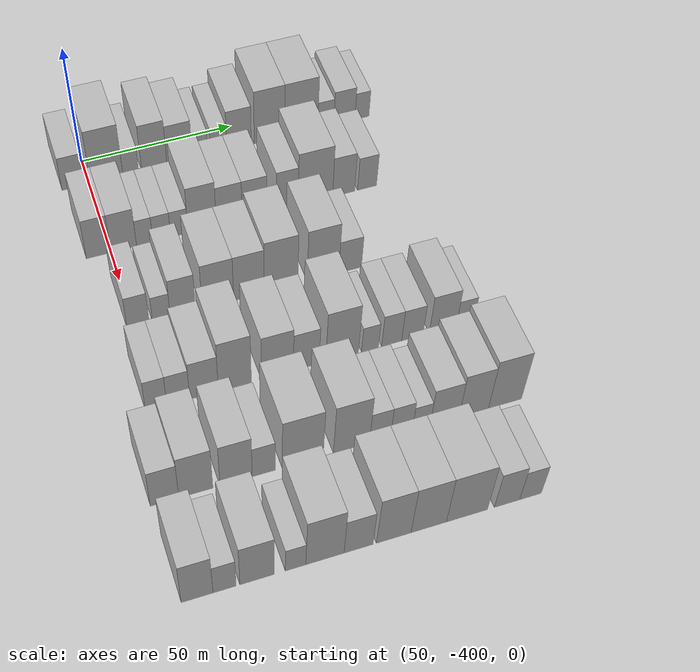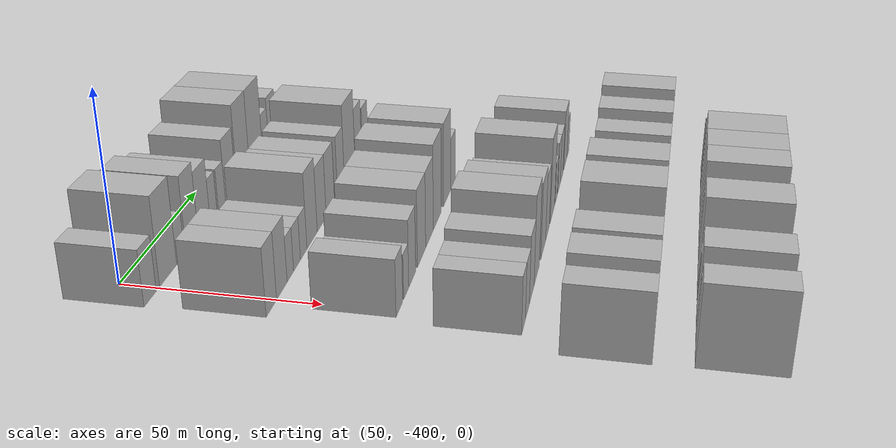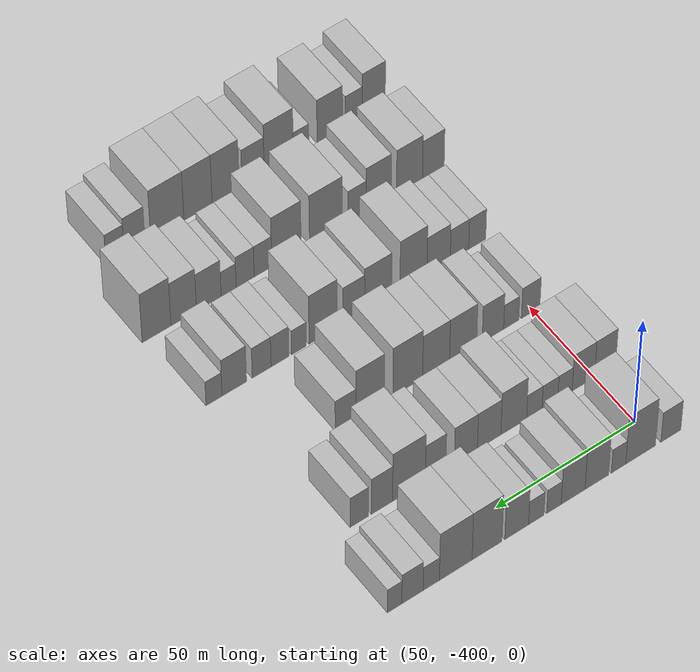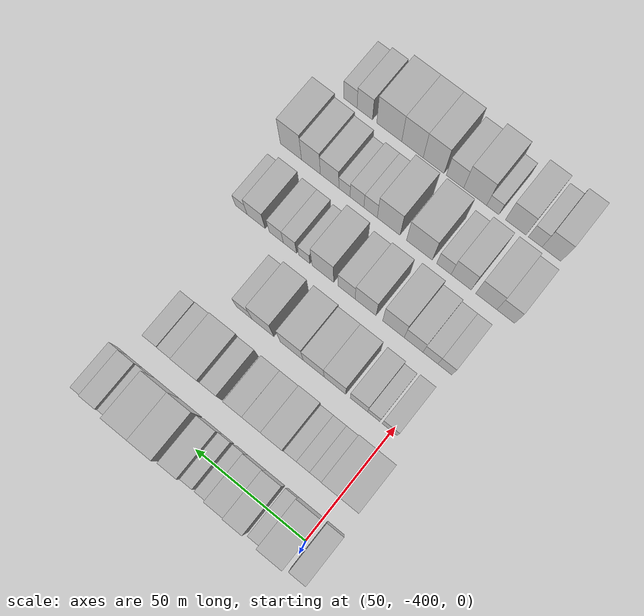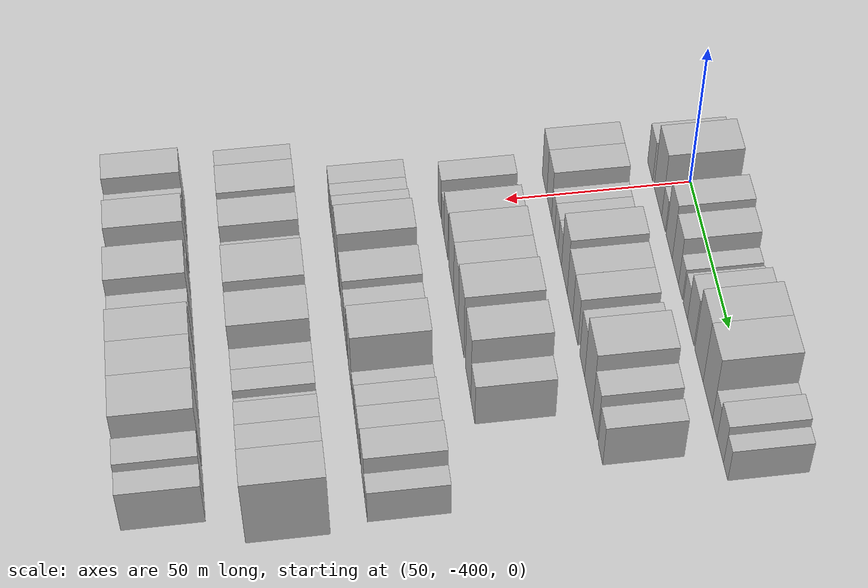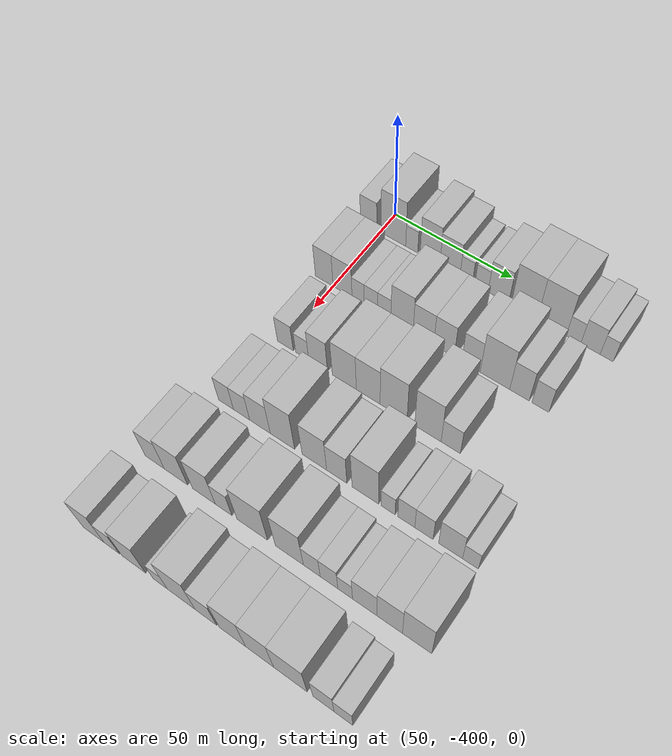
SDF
<sdf version="1.6">
 <world name="default">
  <model name="building_13">
   <static>1</static>
   <pose>50.0000 -405.1917 0 0.000000 0.000000 0.000000</pose>
   <link name="link">
    <pose>0 0 7.50 0 0 0</pose>
    <collision name="collision"><geometry><box><size>20.0000 7.2575 15.0000</size></box></geometry></collision>
    <visual name="visual">
     <cast_shadows>0</cast_shadows>
     <geometry><box><size>20.0000 7.2575 15.0000</size></box></geometry>
     <material>
      <script>
       <uri>model://HANNAS_wall/materials/scripts</uri>
       <uri>model://HANNAS_wall/materials/textures</uri>
       <name>vrc/HANNAS_wall</name>
      </script>
     </material>
    </visual>
   </link>
  </model>
  <model name="building_14">
   <static>1</static>
   <pose>50.0000 -394.1931 0 0.000000 0.000000 0.000000</pose>
   <link name="link">
    <pose>0 0 12.00 0 0 0</pose>
    <collision name="collision"><geometry><box><size>20.0000 10.7398 24.0000</size></box></geometry></collision>
    <visual name="visual">
     <cast_shadows>0</cast_shadows>
     <geometry><box><size>20.0000 10.7398 24.0000</size></box></geometry>
     <material>
      <script>
       <uri>model://HANNAS_wall/materials/scripts</uri>
       <uri>model://HANNAS_wall/materials/textures</uri>
       <name>vrc/HANNAS_wall</name>
      </script>
     </material>
    </visual>
   </link>
  </model>
  <model name="building_15">
   <static>1</static>
   <pose>50.0000 -386.2215 0 0.000000 0.000000 0.000000</pose>
   <link name="link">
    <pose>0 0 6.00 0 0 0</pose>
    <collision name="collision"><geometry><box><size>20.0000 5.2034 12.0000</size></box></geometry></collision>
    <visual name="visual">
     <cast_shadows>0</cast_shadows>
     <geometry><box><size>20.0000 5.2034 12.0000</size></box></geometry>
     <material>
      <script>
       <uri>model://HANNAS_wall/materials/scripts</uri>
       <uri>model://HANNAS_wall/materials/textures</uri>
       <name>vrc/HANNAS_wall</name>
      </script>
     </material>
    </visual>
   </link>
  </model>
  <model name="building_16">
   <static>1</static>
   <pose>50.0000 -378.4043 0 0.000000 0.000000 0.000000</pose>
   <link name="link">
    <pose>0 0 10.50 0 0 0</pose>
    <collision name="collision"><geometry><box><size>20.0000 8.4311 21.0000</size></box></geometry></collision>
    <visual name="visual">
     <cast_shadows>0</cast_shadows>
     <geometry><box><size>20.0000 8.4311 21.0000</size></box></geometry>
     <material>
      <script>
       <uri>model://HANNAS_wall/materials/scripts</uri>
       <uri>model://HANNAS_wall/materials/textures</uri>
       <name>vrc/HANNAS_wall</name>
      </script>
     </material>
    </visual>
   </link>
  </model>
  <model name="building_17">
   <static>1</static>
   <pose>50.0000 -369.9355 0 0.000000 0.000000 0.000000</pose>
   <link name="link">
    <pose>0 0 9.00 0 0 0</pose>
    <collision name="collision"><geometry><box><size>20.0000 8.5065 18.0000</size></box></geometry></collision>
    <visual name="visual">
     <cast_shadows>0</cast_shadows>
     <geometry><box><size>20.0000 8.5065 18.0000</size></box></geometry>
     <material>
      <script>
       <uri>model://HANNAS_wall/materials/scripts</uri>
       <uri>model://HANNAS_wall/materials/textures</uri>
       <name>vrc/HANNAS_wall</name>
      </script>
     </material>
    </visual>
   </link>
  </model>
  <model name="building_18">
   <static>1</static>
   <pose>50.0000 -363.0840 0 0.000000 0.000000 0.000000</pose>
   <link name="link">
    <pose>0 0 6.00 0 0 0</pose>
    <collision name="collision"><geometry><box><size>20.0000 5.1966 12.0000</size></box></geometry></collision>
    <visual name="visual">
     <cast_shadows>0</cast_shadows>
     <geometry><box><size>20.0000 5.1966 12.0000</size></box></geometry>
     <material>
      <script>
       <uri>model://HANNAS_wall/materials/scripts</uri>
       <uri>model://HANNAS_wall/materials/textures</uri>
       <name>vrc/HANNAS_wall</name>
      </script>
     </material>
    </visual>
   </link>
  </model>
  <model name="building_19">
   <static>1</static>
   <pose>50.0000 -356.7629 0 0.000000 0.000000 0.000000</pose>
   <link name="link">
    <pose>0 0 6.00 0 0 0</pose>
    <collision name="collision"><geometry><box><size>20.0000 5.4455 12.0000</size></box></geometry></collision>
    <visual name="visual">
     <cast_shadows>0</cast_shadows>
     <geometry><box><size>20.0000 5.4455 12.0000</size></box></geometry>
     <material>
      <script>
       <uri>model://HANNAS_wall/materials/scripts</uri>
       <uri>model://HANNAS_wall/materials/textures</uri>
       <name>vrc/HANNAS_wall</name>
      </script>
     </material>
    </visual>
   </link>
  </model>
  <model name="building_20">
   <static>1</static>
   <pose>50.0000 -349.8365 0 0.000000 0.000000 0.000000</pose>
   <link name="link">
    <pose>0 0 9.00 0 0 0</pose>
    <collision name="collision"><geometry><box><size>20.0000 8.4072 18.0000</size></box></geometry></collision>
    <visual name="visual">
     <cast_shadows>0</cast_shadows>
     <geometry><box><size>20.0000 8.4072 18.0000</size></box></geometry>
     <material>
      <script>
       <uri>model://HANNAS_wall/materials/scripts</uri>
       <uri>model://HANNAS_wall/materials/textures</uri>
       <name>vrc/HANNAS_wall</name>
      </script>
     </material>
    </visual>
   </link>
  </model>
  <model name="building_21">
   <static>1</static>
   <pose>50.0000 -339.3673 0 0.000000 0.000000 0.000000</pose>
   <link name="link">
    <pose>0 0 12.00 0 0 0</pose>
    <collision name="collision"><geometry><box><size>20.0000 10.5312 24.0000</size></box></geometry></collision>
    <visual name="visual">
     <cast_shadows>0</cast_shadows>
     <geometry><box><size>20.0000 10.5312 24.0000</size></box></geometry>
     <material>
      <script>
       <uri>model://HANNAS_wall/materials/scripts</uri>
       <uri>model://HANNAS_wall/materials/textures</uri>
       <name>vrc/HANNAS_wall</name>
      </script>
     </material>
    </visual>
   </link>
  </model>
  <model name="building_22">
   <static>1</static>
   <pose>50.0000 -328.3895 0 0.000000 0.000000 0.000000</pose>
   <link name="link">
    <pose>0 0 12.00 0 0 0</pose>
    <collision name="collision"><geometry><box><size>20.0000 11.4244 24.0000</size></box></geometry></collision>
    <visual name="visual">
     <cast_shadows>0</cast_shadows>
     <geometry><box><size>20.0000 11.4244 24.0000</size></box></geometry>
     <material>
      <script>
       <uri>model://HANNAS_wall/materials/scripts</uri>
       <uri>model://HANNAS_wall/materials/textures</uri>
       <name>vrc/HANNAS_wall</name>
      </script>
     </material>
    </visual>
   </link>
  </model>
  <model name="building_23">
   <static>1</static>
   <pose>50.0000 -319.8592 0 0.000000 0.000000 0.000000</pose>
   <link name="link">
    <pose>0 0 6.00 0 0 0</pose>
    <collision name="collision"><geometry><box><size>20.0000 5.6362 12.0000</size></box></geometry></collision>
    <visual name="visual">
     <cast_shadows>0</cast_shadows>
     <geometry><box><size>20.0000 5.6362 12.0000</size></box></geometry>
     <material>
      <script>
       <uri>model://HANNAS_wall/materials/scripts</uri>
       <uri>model://HANNAS_wall/materials/textures</uri>
       <name>vrc/HANNAS_wall</name>
      </script>
     </material>
    </visual>
   </link>
  </model>
  <model name="building_24">
   <static>1</static>
   <pose>50.0000 -313.3237 0 0.000000 0.000000 0.000000</pose>
   <link name="link">
    <pose>0 0 7.50 0 0 0</pose>
    <collision name="collision"><geometry><box><size>20.0000 7.4347 15.0000</size></box></geometry></collision>
    <visual name="visual">
     <cast_shadows>0</cast_shadows>
     <geometry><box><size>20.0000 7.4347 15.0000</size></box></geometry>
     <material>
      <script>
       <uri>model://HANNAS_wall/materials/scripts</uri>
       <uri>model://HANNAS_wall/materials/textures</uri>
       <name>vrc/HANNAS_wall</name>
      </script>
     </material>
    </visual>
   </link>
  </model>
  <model name="building_25">
   <static>1</static>
   <pose>50.0000 -307.1202 0 0.000000 0.000000 0.000000</pose>
   <link name="link">
    <pose>0 0 6.00 0 0 0</pose>
    <collision name="collision"><geometry><box><size>20.0000 4.9723 12.0000</size></box></geometry></collision>
    <visual name="visual">
     <cast_shadows>0</cast_shadows>
     <geometry><box><size>20.0000 4.9723 12.0000</size></box></geometry>
     <material>
      <script>
       <uri>model://HANNAS_wall/materials/scripts</uri>
       <uri>model://HANNAS_wall/materials/textures</uri>
       <name>vrc/HANNAS_wall</name>
      </script>
     </material>
    </visual>
   </link>
  </model>
  <model name="building_132">
   <static>1</static>
   <pose>79.0000 -403.9005 0 0.000000 0.000000 0.000000</pose>
   <link name="link">
    <pose>0 0 9.00 0 0 0</pose>
    <collision name="collision"><geometry><box><size>20.0000 7.7233 18.0000</size></box></geometry></collision>
    <visual name="visual">
     <cast_shadows>0</cast_shadows>
     <geometry><box><size>20.0000 7.7233 18.0000</size></box></geometry>
     <material>
      <script>
       <uri>model://HANNAS_wall/materials/scripts</uri>
       <uri>model://HANNAS_wall/materials/textures</uri>
       <name>vrc/HANNAS_wall</name>
      </script>
     </material>
    </visual>
   </link>
  </model>
  <model name="building_133">
   <static>1</static>
   <pose>79.0000 -395.9456 0 0.000000 0.000000 0.000000</pose>
   <link name="link">
    <pose>0 0 9.00 0 0 0</pose>
    <collision name="collision"><geometry><box><size>20.0000 8.1865 18.0000</size></box></geometry></collision>
    <visual name="visual">
     <cast_shadows>0</cast_shadows>
     <geometry><box><size>20.0000 8.1865 18.0000</size></box></geometry>
     <material>
      <script>
       <uri>model://HANNAS_wall/materials/scripts</uri>
       <uri>model://HANNAS_wall/materials/textures</uri>
       <name>vrc/HANNAS_wall</name>
      </script>
     </material>
    </visual>
   </link>
  </model>
  <model name="building_134">
   <static>1</static>
   <pose>79.0000 -389.2484 0 0.000000 0.000000 0.000000</pose>
   <link name="link">
    <pose>0 0 6.00 0 0 0</pose>
    <collision name="collision"><geometry><box><size>20.0000 5.2079 12.0000</size></box></geometry></collision>
    <visual name="visual">
     <cast_shadows>0</cast_shadows>
     <geometry><box><size>20.0000 5.2079 12.0000</size></box></geometry>
     <material>
      <script>
       <uri>model://HANNAS_wall/materials/scripts</uri>
       <uri>model://HANNAS_wall/materials/textures</uri>
       <name>vrc/HANNAS_wall</name>
      </script>
     </material>
    </visual>
   </link>
  </model>
  <model name="building_135">
   <static>1</static>
   <pose>79.0000 -383.7924 0 0.000000 0.000000 0.000000</pose>
   <link name="link">
    <pose>0 0 6.00 0 0 0</pose>
    <collision name="collision"><geometry><box><size>20.0000 5.7040 12.0000</size></box></geometry></collision>
    <visual name="visual">
     <cast_shadows>0</cast_shadows>
     <geometry><box><size>20.0000 5.7040 12.0000</size></box></geometry>
     <material>
      <script>
       <uri>model://HANNAS_wall/materials/scripts</uri>
       <uri>model://HANNAS_wall/materials/textures</uri>
       <name>vrc/HANNAS_wall</name>
      </script>
     </material>
    </visual>
   </link>
  </model>
  <model name="building_136">
   <static>1</static>
   <pose>79.0000 -378.1540 0 0.000000 0.000000 0.000000</pose>
   <link name="link">
    <pose>0 0 6.00 0 0 0</pose>
    <collision name="collision"><geometry><box><size>20.0000 5.5729 12.0000</size></box></geometry></collision>
    <visual name="visual">
     <cast_shadows>0</cast_shadows>
     <geometry><box><size>20.0000 5.5729 12.0000</size></box></geometry>
     <material>
      <script>
       <uri>model://HANNAS_wall/materials/scripts</uri>
       <uri>model://HANNAS_wall/materials/textures</uri>
       <name>vrc/HANNAS_wall</name>
      </script>
     </material>
    </visual>
   </link>
  </model>
  <model name="building_137">
   <static>1</static>
   <pose>79.0000 -370.7652 0 0.000000 0.000000 0.000000</pose>
   <link name="link">
    <pose>0 0 10.50 0 0 0</pose>
    <collision name="collision"><geometry><box><size>20.0000 9.2048 21.0000</size></box></geometry></collision>
    <visual name="visual">
     <cast_shadows>0</cast_shadows>
     <geometry><box><size>20.0000 9.2048 21.0000</size></box></geometry>
     <material>
      <script>
       <uri>model://HANNAS_wall/materials/scripts</uri>
       <uri>model://HANNAS_wall/materials/textures</uri>
       <name>vrc/HANNAS_wall</name>
      </script>
     </material>
    </visual>
   </link>
  </model>
  <model name="building_138">
   <static>1</static>
   <pose>79.0000 -361.9419 0 0.000000 0.000000 0.000000</pose>
   <link name="link">
    <pose>0 0 9.00 0 0 0</pose>
    <collision name="collision"><geometry><box><size>20.0000 8.4418 18.0000</size></box></geometry></collision>
    <visual name="visual">
     <cast_shadows>0</cast_shadows>
     <geometry><box><size>20.0000 8.4418 18.0000</size></box></geometry>
     <material>
      <script>
       <uri>model://HANNAS_wall/materials/scripts</uri>
       <uri>model://HANNAS_wall/materials/textures</uri>
       <name>vrc/HANNAS_wall</name>
      </script>
     </material>
    </visual>
   </link>
  </model>
  <model name="building_139">
   <static>1</static>
   <pose>79.0000 -353.6182 0 0.000000 0.000000 0.000000</pose>
   <link name="link">
    <pose>0 0 9.00 0 0 0</pose>
    <collision name="collision"><geometry><box><size>20.0000 8.2054 18.0000</size></box></geometry></collision>
    <visual name="visual">
     <cast_shadows>0</cast_shadows>
     <geometry><box><size>20.0000 8.2054 18.0000</size></box></geometry>
     <material>
      <script>
       <uri>model://HANNAS_wall/materials/scripts</uri>
       <uri>model://HANNAS_wall/materials/textures</uri>
       <name>vrc/HANNAS_wall</name>
      </script>
     </material>
    </visual>
   </link>
  </model>
  <model name="building_140">
   <static>1</static>
   <pose>79.0000 -342.8990 0 0.000000 0.000000 0.000000</pose>
   <link name="link">
    <pose>0 0 9.00 0 0 0</pose>
    <collision name="collision"><geometry><box><size>20.0000 7.2331 18.0000</size></box></geometry></collision>
    <visual name="visual">
     <cast_shadows>0</cast_shadows>
     <geometry><box><size>20.0000 7.2331 18.0000</size></box></geometry>
     <material>
      <script>
       <uri>model://HANNAS_wall/materials/scripts</uri>
       <uri>model://HANNAS_wall/materials/textures</uri>
       <name>vrc/HANNAS_wall</name>
      </script>
     </material>
    </visual>
   </link>
  </model>
  <model name="building_141">
   <static>1</static>
   <pose>79.0000 -333.4975 0 0.000000 0.000000 0.000000</pose>
   <link name="link">
    <pose>0 0 12.00 0 0 0</pose>
    <collision name="collision"><geometry><box><size>20.0000 11.5697 24.0000</size></box></geometry></collision>
    <visual name="visual">
     <cast_shadows>0</cast_shadows>
     <geometry><box><size>20.0000 11.5697 24.0000</size></box></geometry>
     <material>
      <script>
       <uri>model://HANNAS_wall/materials/scripts</uri>
       <uri>model://HANNAS_wall/materials/textures</uri>
       <name>vrc/HANNAS_wall</name>
      </script>
     </material>
    </visual>
   </link>
  </model>
  <model name="building_142">
   <static>1</static>
   <pose>79.0000 -323.9818 0 0.000000 0.000000 0.000000</pose>
   <link name="link">
    <pose>0 0 9.00 0 0 0</pose>
    <collision name="collision"><geometry><box><size>20.0000 7.4618 18.0000</size></box></geometry></collision>
    <visual name="visual">
     <cast_shadows>0</cast_shadows>
     <geometry><box><size>20.0000 7.4618 18.0000</size></box></geometry>
     <material>
      <script>
       <uri>model://HANNAS_wall/materials/scripts</uri>
       <uri>model://HANNAS_wall/materials/textures</uri>
       <name>vrc/HANNAS_wall</name>
      </script>
     </material>
    </visual>
   </link>
  </model>
  <model name="building_143">
   <static>1</static>
   <pose>79.0000 -316.0363 0 0.000000 0.000000 0.000000</pose>
   <link name="link">
    <pose>0 0 7.50 0 0 0</pose>
    <collision name="collision"><geometry><box><size>20.0000 6.4293 15.0000</size></box></geometry></collision>
    <visual name="visual">
     <cast_shadows>0</cast_shadows>
     <geometry><box><size>20.0000 6.4293 15.0000</size></box></geometry>
     <material>
      <script>
       <uri>model://HANNAS_wall/materials/scripts</uri>
       <uri>model://HANNAS_wall/materials/textures</uri>
       <name>vrc/HANNAS_wall</name>
      </script>
     </material>
    </visual>
   </link>
  </model>
  <model name="building_247">
   <static>1</static>
   <pose>108.0000 -398.9065 0 0.000000 0.000000 0.000000</pose>
   <link name="link">
    <pose>0 0 7.50 0 0 0</pose>
    <collision name="collision"><geometry><box><size>20.0000 6.7794 15.0000</size></box></geometry></collision>
    <visual name="visual">
     <cast_shadows>0</cast_shadows>
     <geometry><box><size>20.0000 6.7794 15.0000</size></box></geometry>
     <material>
      <script>
       <uri>model://HANNAS_wall/materials/scripts</uri>
       <uri>model://HANNAS_wall/materials/textures</uri>
       <name>vrc/HANNAS_wall</name>
      </script>
     </material>
    </visual>
   </link>
  </model>
  <model name="building_248">
   <static>1</static>
   <pose>108.0000 -391.7732 0 0.000000 0.000000 0.000000</pose>
   <link name="link">
    <pose>0 0 6.00 0 0 0</pose>
    <collision name="collision"><geometry><box><size>20.0000 5.4873 12.0000</size></box></geometry></collision>
    <visual name="visual">
     <cast_shadows>0</cast_shadows>
     <geometry><box><size>20.0000 5.4873 12.0000</size></box></geometry>
     <material>
      <script>
       <uri>model://HANNAS_wall/materials/scripts</uri>
       <uri>model://HANNAS_wall/materials/textures</uri>
       <name>vrc/HANNAS_wall</name>
      </script>
     </material>
    </visual>
   </link>
  </model>
  <model name="building_249">
   <static>1</static>
   <pose>108.0000 -385.1153 0 0.000000 0.000000 0.000000</pose>
   <link name="link">
    <pose>0 0 9.00 0 0 0</pose>
    <collision name="collision"><geometry><box><size>20.0000 7.8285 18.0000</size></box></geometry></collision>
    <visual name="visual">
     <cast_shadows>0</cast_shadows>
     <geometry><box><size>20.0000 7.8285 18.0000</size></box></geometry>
     <material>
      <script>
       <uri>model://HANNAS_wall/materials/scripts</uri>
       <uri>model://HANNAS_wall/materials/textures</uri>
       <name>vrc/HANNAS_wall</name>
      </script>
     </material>
    </visual>
   </link>
  </model>
  <model name="building_250">
   <static>1</static>
   <pose>108.0000 -374.2807 0 0.000000 0.000000 0.000000</pose>
   <link name="link">
    <pose>0 0 10.50 0 0 0</pose>
    <collision name="collision"><geometry><box><size>20.0000 9.8407 21.0000</size></box></geometry></collision>
    <visual name="visual">
     <cast_shadows>0</cast_shadows>
     <geometry><box><size>20.0000 9.8407 21.0000</size></box></geometry>
     <material>
      <script>
       <uri>model://HANNAS_wall/materials/scripts</uri>
       <uri>model://HANNAS_wall/materials/textures</uri>
       <name>vrc/HANNAS_wall</name>
      </script>
     </material>
    </visual>
   </link>
  </model>
  <model name="building_251">
   <static>1</static>
   <pose>108.0000 -364.5624 0 0.000000 0.000000 0.000000</pose>
   <link name="link">
    <pose>0 0 10.50 0 0 0</pose>
    <collision name="collision"><geometry><box><size>20.0000 9.5959 21.0000</size></box></geometry></collision>
    <visual name="visual">
     <cast_shadows>0</cast_shadows>
     <geometry><box><size>20.0000 9.5959 21.0000</size></box></geometry>
     <material>
      <script>
       <uri>model://HANNAS_wall/materials/scripts</uri>
       <uri>model://HANNAS_wall/materials/textures</uri>
       <name>vrc/HANNAS_wall</name>
      </script>
     </material>
    </visual>
   </link>
  </model>
  <model name="building_252">
   <static>1</static>
   <pose>108.0000 -354.4487 0 0.000000 0.000000 0.000000</pose>
   <link name="link">
    <pose>0 0 12.00 0 0 0</pose>
    <collision name="collision"><geometry><box><size>20.0000 10.6316 24.0000</size></box></geometry></collision>
    <visual name="visual">
     <cast_shadows>0</cast_shadows>
     <geometry><box><size>20.0000 10.6316 24.0000</size></box></geometry>
     <material>
      <script>
       <uri>model://HANNAS_wall/materials/scripts</uri>
       <uri>model://HANNAS_wall/materials/textures</uri>
       <name>vrc/HANNAS_wall</name>
      </script>
     </material>
    </visual>
   </link>
  </model>
  <model name="building_253">
   <static>1</static>
   <pose>108.0000 -341.0352 0 0.000000 0.000000 0.000000</pose>
   <link name="link">
    <pose>0 0 12.00 0 0 0</pose>
    <collision name="collision"><geometry><box><size>20.0000 10.1953 24.0000</size></box></geometry></collision>
    <visual name="visual">
     <cast_shadows>0</cast_shadows>
     <geometry><box><size>20.0000 10.1953 24.0000</size></box></geometry>
     <material>
      <script>
       <uri>model://HANNAS_wall/materials/scripts</uri>
       <uri>model://HANNAS_wall/materials/textures</uri>
       <name>vrc/HANNAS_wall</name>
      </script>
     </material>
    </visual>
   </link>
  </model>
  <model name="building_254">
   <static>1</static>
   <pose>108.0000 -332.2773 0 0.000000 0.000000 0.000000</pose>
   <link name="link">
    <pose>0 0 7.50 0 0 0</pose>
    <collision name="collision"><geometry><box><size>20.0000 7.3206 15.0000</size></box></geometry></collision>
    <visual name="visual">
     <cast_shadows>0</cast_shadows>
     <geometry><box><size>20.0000 7.3206 15.0000</size></box></geometry>
     <material>
      <script>
       <uri>model://HANNAS_wall/materials/scripts</uri>
       <uri>model://HANNAS_wall/materials/textures</uri>
       <name>vrc/HANNAS_wall</name>
      </script>
     </material>
    </visual>
   </link>
  </model>
  <model name="building_356">
   <static>1</static>
   <pose>137.0000 -401.1814 0 0.000000 0.000000 0.000000</pose>
   <link name="link">
    <pose>0 0 7.50 0 0 0</pose>
    <collision name="collision"><geometry><box><size>20.0000 6.2636 15.0000</size></box></geometry></collision>
    <visual name="visual">
     <cast_shadows>0</cast_shadows>
     <geometry><box><size>20.0000 6.2636 15.0000</size></box></geometry>
     <material>
      <script>
       <uri>model://HANNAS_wall/materials/scripts</uri>
       <uri>model://HANNAS_wall/materials/textures</uri>
       <name>vrc/HANNAS_wall</name>
      </script>
     </material>
    </visual>
   </link>
  </model>
  <model name="building_357">
   <static>1</static>
   <pose>137.0000 -394.6668 0 0.000000 0.000000 0.000000</pose>
   <link name="link">
    <pose>0 0 7.50 0 0 0</pose>
    <collision name="collision"><geometry><box><size>20.0000 6.7656 15.0000</size></box></geometry></collision>
    <visual name="visual">
     <cast_shadows>0</cast_shadows>
     <geometry><box><size>20.0000 6.7656 15.0000</size></box></geometry>
     <material>
      <script>
       <uri>model://HANNAS_wall/materials/scripts</uri>
       <uri>model://HANNAS_wall/materials/textures</uri>
       <name>vrc/HANNAS_wall</name>
      </script>
     </material>
    </visual>
   </link>
  </model>
  <model name="building_358">
   <static>1</static>
   <pose>137.0000 -387.0456 0 0.000000 0.000000 0.000000</pose>
   <link name="link">
    <pose>0 0 9.00 0 0 0</pose>
    <collision name="collision"><geometry><box><size>20.0000 8.4768 18.0000</size></box></geometry></collision>
    <visual name="visual">
     <cast_shadows>0</cast_shadows>
     <geometry><box><size>20.0000 8.4768 18.0000</size></box></geometry>
     <material>
      <script>
       <uri>model://HANNAS_wall/materials/scripts</uri>
       <uri>model://HANNAS_wall/materials/textures</uri>
       <name>vrc/HANNAS_wall</name>
      </script>
     </material>
    </visual>
   </link>
  </model>
  <model name="building_359">
   <static>1</static>
   <pose>137.0000 -377.8778 0 0.000000 0.000000 0.000000</pose>
   <link name="link">
    <pose>0 0 12.00 0 0 0</pose>
    <collision name="collision"><geometry><box><size>20.0000 9.8588 24.0000</size></box></geometry></collision>
    <visual name="visual">
     <cast_shadows>0</cast_shadows>
     <geometry><box><size>20.0000 9.8588 24.0000</size></box></geometry>
     <material>
      <script>
       <uri>model://HANNAS_wall/materials/scripts</uri>
       <uri>model://HANNAS_wall/materials/textures</uri>
       <name>vrc/HANNAS_wall</name>
      </script>
     </material>
    </visual>
   </link>
  </model>
  <model name="building_360">
   <static>1</static>
   <pose>137.0000 -365.0944 0 0.000000 0.000000 0.000000</pose>
   <link name="link">
    <pose>0 0 10.50 0 0 0</pose>
    <collision name="collision"><geometry><box><size>20.0000 9.7081 21.0000</size></box></geometry></collision>
    <visual name="visual">
     <cast_shadows>0</cast_shadows>
     <geometry><box><size>20.0000 9.7081 21.0000</size></box></geometry>
     <material>
      <script>
       <uri>model://HANNAS_wall/materials/scripts</uri>
       <uri>model://HANNAS_wall/materials/textures</uri>
       <name>vrc/HANNAS_wall</name>
      </script>
     </material>
    </visual>
   </link>
  </model>
  <model name="building_361">
   <static>1</static>
   <pose>137.0000 -356.2952 0 0.000000 0.000000 0.000000</pose>
   <link name="link">
    <pose>0 0 9.00 0 0 0</pose>
    <collision name="collision"><geometry><box><size>20.0000 7.8902 18.0000</size></box></geometry></collision>
    <visual name="visual">
     <cast_shadows>0</cast_shadows>
     <geometry><box><size>20.0000 7.8902 18.0000</size></box></geometry>
     <material>
      <script>
       <uri>model://HANNAS_wall/materials/scripts</uri>
       <uri>model://HANNAS_wall/materials/textures</uri>
       <name>vrc/HANNAS_wall</name>
      </script>
     </material>
    </visual>
   </link>
  </model>
  <model name="building_362">
   <static>1</static>
   <pose>137.0000 -345.2981 0 0.000000 0.000000 0.000000</pose>
   <link name="link">
    <pose>0 0 12.00 0 0 0</pose>
    <collision name="collision"><geometry><box><size>20.0000 10.1041 24.0000</size></box></geometry></collision>
    <visual name="visual">
     <cast_shadows>0</cast_shadows>
     <geometry><box><size>20.0000 10.1041 24.0000</size></box></geometry>
     <material>
      <script>
       <uri>model://HANNAS_wall/materials/scripts</uri>
       <uri>model://HANNAS_wall/materials/textures</uri>
       <name>vrc/HANNAS_wall</name>
      </script>
     </material>
    </visual>
   </link>
  </model>
  <model name="building_363">
   <static>1</static>
   <pose>137.0000 -336.6215 0 0.000000 0.000000 0.000000</pose>
   <link name="link">
    <pose>0 0 6.00 0 0 0</pose>
    <collision name="collision"><geometry><box><size>20.0000 5.2491 12.0000</size></box></geometry></collision>
    <visual name="visual">
     <cast_shadows>0</cast_shadows>
     <geometry><box><size>20.0000 5.2491 12.0000</size></box></geometry>
     <material>
      <script>
       <uri>model://HANNAS_wall/materials/scripts</uri>
       <uri>model://HANNAS_wall/materials/textures</uri>
       <name>vrc/HANNAS_wall</name>
      </script>
     </material>
    </visual>
   </link>
  </model>
  <model name="building_364">
   <static>1</static>
   <pose>137.0000 -329.8567 0 0.000000 0.000000 0.000000</pose>
   <link name="link">
    <pose>0 0 7.50 0 0 0</pose>
    <collision name="collision"><geometry><box><size>20.0000 6.2806 15.0000</size></box></geometry></collision>
    <visual name="visual">
     <cast_shadows>0</cast_shadows>
     <geometry><box><size>20.0000 6.2806 15.0000</size></box></geometry>
     <material>
      <script>
       <uri>model://HANNAS_wall/materials/scripts</uri>
       <uri>model://HANNAS_wall/materials/textures</uri>
       <name>vrc/HANNAS_wall</name>
      </script>
     </material>
    </visual>
   </link>
  </model>
  <model name="building_365">
   <static>1</static>
   <pose>137.0000 -323.3715 0 0.000000 0.000000 0.000000</pose>
   <link name="link">
    <pose>0 0 7.50 0 0 0</pose>
    <collision name="collision"><geometry><box><size>20.0000 6.6898 15.0000</size></box></geometry></collision>
    <visual name="visual">
     <cast_shadows>0</cast_shadows>
     <geometry><box><size>20.0000 6.6898 15.0000</size></box></geometry>
     <material>
      <script>
       <uri>model://HANNAS_wall/materials/scripts</uri>
       <uri>model://HANNAS_wall/materials/textures</uri>
       <name>vrc/HANNAS_wall</name>
      </script>
     </material>
    </visual>
   </link>
  </model>
  <model name="building_366">
   <static>1</static>
   <pose>137.0000 -313.7157 0 0.000000 0.000000 0.000000</pose>
   <link name="link">
    <pose>0 0 9.00 0 0 0</pose>
    <collision name="collision"><geometry><box><size>20.0000 8.6218 18.0000</size></box></geometry></collision>
    <visual name="visual">
     <cast_shadows>0</cast_shadows>
     <geometry><box><size>20.0000 8.6218 18.0000</size></box></geometry>
     <material>
      <script>
       <uri>model://HANNAS_wall/materials/scripts</uri>
       <uri>model://HANNAS_wall/materials/textures</uri>
       <name>vrc/HANNAS_wall</name>
      </script>
     </material>
    </visual>
   </link>
  </model>
  <model name="building_367">
   <static>1</static>
   <pose>137.0000 -306.5752 0 0.000000 0.000000 0.000000</pose>
   <link name="link">
    <pose>0 0 6.00 0 0 0</pose>
    <collision name="collision"><geometry><box><size>20.0000 5.6593 12.0000</size></box></geometry></collision>
    <visual name="visual">
     <cast_shadows>0</cast_shadows>
     <geometry><box><size>20.0000 5.6593 12.0000</size></box></geometry>
     <material>
      <script>
       <uri>model://HANNAS_wall/materials/scripts</uri>
       <uri>model://HANNAS_wall/materials/textures</uri>
       <name>vrc/HANNAS_wall</name>
      </script>
     </material>
    </visual>
   </link>
  </model>
  <model name="building_467">
   <static>1</static>
   <pose>166.0000 -406.6276 0 0.000000 0.000000 0.000000</pose>
   <link name="link">
    <pose>0 0 9.00 0 0 0</pose>
    <collision name="collision"><geometry><box><size>20.0000 8.0133 18.0000</size></box></geometry></collision>
    <visual name="visual">
     <cast_shadows>0</cast_shadows>
     <geometry><box><size>20.0000 8.0133 18.0000</size></box></geometry>
     <material>
      <script>
       <uri>model://HANNAS_wall/materials/scripts</uri>
       <uri>model://HANNAS_wall/materials/textures</uri>
       <name>vrc/HANNAS_wall</name>
      </script>
     </material>
    </visual>
   </link>
  </model>
  <model name="building_468">
   <static>1</static>
   <pose>166.0000 -397.8229 0 0.000000 0.000000 0.000000</pose>
   <link name="link">
    <pose>0 0 10.50 0 0 0</pose>
    <collision name="collision"><geometry><box><size>20.0000 9.5961 21.0000</size></box></geometry></collision>
    <visual name="visual">
     <cast_shadows>0</cast_shadows>
     <geometry><box><size>20.0000 9.5961 21.0000</size></box></geometry>
     <material>
      <script>
       <uri>model://HANNAS_wall/materials/scripts</uri>
       <uri>model://HANNAS_wall/materials/textures</uri>
       <name>vrc/HANNAS_wall</name>
      </script>
     </material>
    </visual>
   </link>
  </model>
  <model name="building_469">
   <static>1</static>
   <pose>166.0000 -386.4255 0 0.000000 0.000000 0.000000</pose>
   <link name="link">
    <pose>0 0 10.50 0 0 0</pose>
    <collision name="collision"><geometry><box><size>20.0000 9.1988 21.0000</size></box></geometry></collision>
    <visual name="visual">
     <cast_shadows>0</cast_shadows>
     <geometry><box><size>20.0000 9.1988 21.0000</size></box></geometry>
     <material>
      <script>
       <uri>model://HANNAS_wall/materials/scripts</uri>
       <uri>model://HANNAS_wall/materials/textures</uri>
       <name>vrc/HANNAS_wall</name>
      </script>
     </material>
    </visual>
   </link>
  </model>
  <model name="building_470">
   <static>1</static>
   <pose>166.0000 -378.5083 0 0.000000 0.000000 0.000000</pose>
   <link name="link">
    <pose>0 0 7.50 0 0 0</pose>
    <collision name="collision"><geometry><box><size>20.0000 6.6354 15.0000</size></box></geometry></collision>
    <visual name="visual">
     <cast_shadows>0</cast_shadows>
     <geometry><box><size>20.0000 6.6354 15.0000</size></box></geometry>
     <material>
      <script>
       <uri>model://HANNAS_wall/materials/scripts</uri>
       <uri>model://HANNAS_wall/materials/textures</uri>
       <name>vrc/HANNAS_wall</name>
      </script>
     </material>
    </visual>
   </link>
  </model>
  <model name="building_471">
   <static>1</static>
   <pose>166.0000 -367.2087 0 0.000000 0.000000 0.000000</pose>
   <link name="link">
    <pose>0 0 12.00 0 0 0</pose>
    <collision name="collision"><geometry><box><size>20.0000 11.9640 24.0000</size></box></geometry></collision>
    <visual name="visual">
     <cast_shadows>0</cast_shadows>
     <geometry><box><size>20.0000 11.9640 24.0000</size></box></geometry>
     <material>
      <script>
       <uri>model://HANNAS_wall/materials/scripts</uri>
       <uri>model://HANNAS_wall/materials/textures</uri>
       <name>vrc/HANNAS_wall</name>
      </script>
     </material>
    </visual>
   </link>
  </model>
  <model name="building_472">
   <static>1</static>
   <pose>166.0000 -352.9115 0 0.000000 0.000000 0.000000</pose>
   <link name="link">
    <pose>0 0 12.00 0 0 0</pose>
    <collision name="collision"><geometry><box><size>20.0000 10.6304 24.0000</size></box></geometry></collision>
    <visual name="visual">
     <cast_shadows>0</cast_shadows>
     <geometry><box><size>20.0000 10.6304 24.0000</size></box></geometry>
     <material>
      <script>
       <uri>model://HANNAS_wall/materials/scripts</uri>
       <uri>model://HANNAS_wall/materials/textures</uri>
       <name>vrc/HANNAS_wall</name>
      </script>
     </material>
    </visual>
   </link>
  </model>
  <model name="building_473">
   <static>1</static>
   <pose>166.0000 -344.4400 0 0.000000 0.000000 0.000000</pose>
   <link name="link">
    <pose>0 0 7.50 0 0 0</pose>
    <collision name="collision"><geometry><box><size>20.0000 6.3125 15.0000</size></box></geometry></collision>
    <visual name="visual">
     <cast_shadows>0</cast_shadows>
     <geometry><box><size>20.0000 6.3125 15.0000</size></box></geometry>
     <material>
      <script>
       <uri>model://HANNAS_wall/materials/scripts</uri>
       <uri>model://HANNAS_wall/materials/textures</uri>
       <name>vrc/HANNAS_wall</name>
      </script>
     </material>
    </visual>
   </link>
  </model>
  <model name="building_474">
   <static>1</static>
   <pose>166.0000 -338.0370 0 0.000000 0.000000 0.000000</pose>
   <link name="link">
    <pose>0 0 7.50 0 0 0</pose>
    <collision name="collision"><geometry><box><size>20.0000 6.4934 15.0000</size></box></geometry></collision>
    <visual name="visual">
     <cast_shadows>0</cast_shadows>
     <geometry><box><size>20.0000 6.4934 15.0000</size></box></geometry>
     <material>
      <script>
       <uri>model://HANNAS_wall/materials/scripts</uri>
       <uri>model://HANNAS_wall/materials/textures</uri>
       <name>vrc/HANNAS_wall</name>
      </script>
     </material>
    </visual>
   </link>
  </model>
  <model name="building_475">
   <static>1</static>
   <pose>166.0000 -332.1135 0 0.000000 0.000000 0.000000</pose>
   <link name="link">
    <pose>0 0 6.00 0 0 0</pose>
    <collision name="collision"><geometry><box><size>20.0000 5.3537 12.0000</size></box></geometry></collision>
    <visual name="visual">
     <cast_shadows>0</cast_shadows>
     <geometry><box><size>20.0000 5.3537 12.0000</size></box></geometry>
     <material>
      <script>
       <uri>model://HANNAS_wall/materials/scripts</uri>
       <uri>model://HANNAS_wall/materials/textures</uri>
       <name>vrc/HANNAS_wall</name>
      </script>
     </material>
    </visual>
   </link>
  </model>
  <model name="building_476">
   <static>1</static>
   <pose>166.0000 -325.0380 0 0.000000 0.000000 0.000000</pose>
   <link name="link">
    <pose>0 0 9.00 0 0 0</pose>
    <collision name="collision"><geometry><box><size>20.0000 8.7972 18.0000</size></box></geometry></collision>
    <visual name="visual">
     <cast_shadows>0</cast_shadows>
     <geometry><box><size>20.0000 8.7972 18.0000</size></box></geometry>
     <material>
      <script>
       <uri>model://HANNAS_wall/materials/scripts</uri>
       <uri>model://HANNAS_wall/materials/textures</uri>
       <name>vrc/HANNAS_wall</name>
      </script>
     </material>
    </visual>
   </link>
  </model>
  <model name="building_477">
   <static>1</static>
   <pose>166.0000 -316.1265 0 0.000000 0.000000 0.000000</pose>
   <link name="link">
    <pose>0 0 10.50 0 0 0</pose>
    <collision name="collision"><geometry><box><size>20.0000 9.0258 21.0000</size></box></geometry></collision>
    <visual name="visual">
     <cast_shadows>0</cast_shadows>
     <geometry><box><size>20.0000 9.0258 21.0000</size></box></geometry>
     <material>
      <script>
       <uri>model://HANNAS_wall/materials/scripts</uri>
       <uri>model://HANNAS_wall/materials/textures</uri>
       <name>vrc/HANNAS_wall</name>
      </script>
     </material>
    </visual>
   </link>
  </model>
  <model name="building_478">
   <static>1</static>
   <pose>166.0000 -306.5245 0 0.000000 0.000000 0.000000</pose>
   <link name="link">
    <pose>0 0 12.00 0 0 0</pose>
    <collision name="collision"><geometry><box><size>20.0000 10.1782 24.0000</size></box></geometry></collision>
    <visual name="visual">
     <cast_shadows>0</cast_shadows>
     <geometry><box><size>20.0000 10.1782 24.0000</size></box></geometry>
     <material>
      <script>
       <uri>model://HANNAS_wall/materials/scripts</uri>
       <uri>model://HANNAS_wall/materials/textures</uri>
       <name>vrc/HANNAS_wall</name>
      </script>
     </material>
    </visual>
   </link>
  </model>
  <model name="building_584">
   <static>1</static>
   <pose>195.0000 -405.8443 0 0.000000 0.000000 0.000000</pose>
   <link name="link">
    <pose>0 0 10.50 0 0 0</pose>
    <collision name="collision"><geometry><box><size>20.0000 8.5583 21.0000</size></box></geometry></collision>
    <visual name="visual">
     <cast_shadows>0</cast_shadows>
     <geometry><box><size>20.0000 8.5583 21.0000</size></box></geometry>
     <material>
      <script>
       <uri>model://HANNAS_wall/materials/scripts</uri>
       <uri>model://HANNAS_wall/materials/textures</uri>
       <name>vrc/HANNAS_wall</name>
      </script>
     </material>
    </visual>
   </link>
  </model>
  <model name="building_585">
   <static>1</static>
   <pose>195.0000 -398.4359 0 0.000000 0.000000 0.000000</pose>
   <link name="link">
    <pose>0 0 7.50 0 0 0</pose>
    <collision name="collision"><geometry><box><size>20.0000 6.2584 15.0000</size></box></geometry></collision>
    <visual name="visual">
     <cast_shadows>0</cast_shadows>
     <geometry><box><size>20.0000 6.2584 15.0000</size></box></geometry>
     <material>
      <script>
       <uri>model://HANNAS_wall/materials/scripts</uri>
       <uri>model://HANNAS_wall/materials/textures</uri>
       <name>vrc/HANNAS_wall</name>
      </script>
     </material>
    </visual>
   </link>
  </model>
  <model name="building_586">
   <static>1</static>
   <pose>195.0000 -389.5809 0 0.000000 0.000000 0.000000</pose>
   <link name="link">
    <pose>0 0 10.50 0 0 0</pose>
    <collision name="collision"><geometry><box><size>20.0000 9.4515 21.0000</size></box></geometry></collision>
    <visual name="visual">
     <cast_shadows>0</cast_shadows>
     <geometry><box><size>20.0000 9.4515 21.0000</size></box></geometry>
     <material>
      <script>
       <uri>model://HANNAS_wall/materials/scripts</uri>
       <uri>model://HANNAS_wall/materials/textures</uri>
       <name>vrc/HANNAS_wall</name>
      </script>
     </material>
    </visual>
   </link>
  </model>
  <model name="building_587">
   <static>1</static>
   <pose>195.0000 -379.0271 0 0.000000 0.000000 0.000000</pose>
   <link name="link">
    <pose>0 0 6.00 0 0 0</pose>
    <collision name="collision"><geometry><box><size>20.0000 5.6561 12.0000</size></box></geometry></collision>
    <visual name="visual">
     <cast_shadows>0</cast_shadows>
     <geometry><box><size>20.0000 5.6561 12.0000</size></box></geometry>
     <material>
      <script>
       <uri>model://HANNAS_wall/materials/scripts</uri>
       <uri>model://HANNAS_wall/materials/textures</uri>
       <name>vrc/HANNAS_wall</name>
      </script>
     </material>
    </visual>
   </link>
  </model>
  <model name="building_588">
   <static>1</static>
   <pose>195.0000 -370.8541 0 0.000000 0.000000 0.000000</pose>
   <link name="link">
    <pose>0 0 12.00 0 0 0</pose>
    <collision name="collision"><geometry><box><size>20.0000 10.6899 24.0000</size></box></geometry></collision>
    <visual name="visual">
     <cast_shadows>0</cast_shadows>
     <geometry><box><size>20.0000 10.6899 24.0000</size></box></geometry>
     <material>
      <script>
       <uri>model://HANNAS_wall/materials/scripts</uri>
       <uri>model://HANNAS_wall/materials/textures</uri>
       <name>vrc/HANNAS_wall</name>
      </script>
     </material>
    </visual>
   </link>
  </model>
  <model name="building_589">
   <static>1</static>
   <pose>195.0000 -361.4437 0 0.000000 0.000000 0.000000</pose>
   <link name="link">
    <pose>0 0 9.00 0 0 0</pose>
    <collision name="collision"><geometry><box><size>20.0000 8.1310 18.0000</size></box></geometry></collision>
    <visual name="visual">
     <cast_shadows>0</cast_shadows>
     <geometry><box><size>20.0000 8.1310 18.0000</size></box></geometry>
     <material>
      <script>
       <uri>model://HANNAS_wall/materials/scripts</uri>
       <uri>model://HANNAS_wall/materials/textures</uri>
       <name>vrc/HANNAS_wall</name>
      </script>
     </material>
    </visual>
   </link>
  </model>
  <model name="building_590">
   <static>1</static>
   <pose>195.0000 -351.4636 0 0.000000 0.000000 0.000000</pose>
   <link name="link">
    <pose>0 0 12.00 0 0 0</pose>
    <collision name="collision"><geometry><box><size>20.0000 9.8292 24.0000</size></box></geometry></collision>
    <visual name="visual">
     <cast_shadows>0</cast_shadows>
     <geometry><box><size>20.0000 9.8292 24.0000</size></box></geometry>
     <material>
      <script>
       <uri>model://HANNAS_wall/materials/scripts</uri>
       <uri>model://HANNAS_wall/materials/textures</uri>
       <name>vrc/HANNAS_wall</name>
      </script>
     </material>
    </visual>
   </link>
  </model>
  <model name="building_591">
   <static>1</static>
   <pose>195.0000 -341.4578 0 0.000000 0.000000 0.000000</pose>
   <link name="link">
    <pose>0 0 12.00 0 0 0</pose>
    <collision name="collision"><geometry><box><size>20.0000 10.1825 24.0000</size></box></geometry></collision>
    <visual name="visual">
     <cast_shadows>0</cast_shadows>
     <geometry><box><size>20.0000 10.1825 24.0000</size></box></geometry>
     <material>
      <script>
       <uri>model://HANNAS_wall/materials/scripts</uri>
       <uri>model://HANNAS_wall/materials/textures</uri>
       <name>vrc/HANNAS_wall</name>
      </script>
     </material>
    </visual>
   </link>
  </model>
  <model name="building_592">
   <static>1</static>
   <pose>195.0000 -330.3998 0 0.000000 0.000000 0.000000</pose>
   <link name="link">
    <pose>0 0 12.00 0 0 0</pose>
    <collision name="collision"><geometry><box><size>20.0000 11.9335 24.0000</size></box></geometry></collision>
    <visual name="visual">
     <cast_shadows>0</cast_shadows>
     <geometry><box><size>20.0000 11.9335 24.0000</size></box></geometry>
     <material>
      <script>
       <uri>model://HANNAS_wall/materials/scripts</uri>
       <uri>model://HANNAS_wall/materials/textures</uri>
       <name>vrc/HANNAS_wall</name>
      </script>
     </material>
    </visual>
   </link>
  </model>
  <model name="building_593">
   <static>1</static>
   <pose>195.0000 -318.7135 0 0.000000 0.000000 0.000000</pose>
   <link name="link">
    <pose>0 0 9.00 0 0 0</pose>
    <collision name="collision"><geometry><box><size>20.0000 7.4391 18.0000</size></box></geometry></collision>
    <visual name="visual">
     <cast_shadows>0</cast_shadows>
     <geometry><box><size>20.0000 7.4391 18.0000</size></box></geometry>
     <material>
      <script>
       <uri>model://HANNAS_wall/materials/scripts</uri>
       <uri>model://HANNAS_wall/materials/textures</uri>
       <name>vrc/HANNAS_wall</name>
      </script>
     </material>
    </visual>
   </link>
  </model>
  <model name="building_594">
   <static>1</static>
   <pose>195.0000 -311.7809 0 0.000000 0.000000 0.000000</pose>
   <link name="link">
    <pose>0 0 7.50 0 0 0</pose>
    <collision name="collision"><geometry><box><size>20.0000 6.4260 15.0000</size></box></geometry></collision>
    <visual name="visual">
     <cast_shadows>0</cast_shadows>
     <geometry><box><size>20.0000 6.4260 15.0000</size></box></geometry>
     <material>
      <script>
       <uri>model://HANNAS_wall/materials/scripts</uri>
       <uri>model://HANNAS_wall/materials/textures</uri>
       <name>vrc/HANNAS_wall</name>
      </script>
     </material>
    </visual>
   </link>
  </model>
 </world>
</sdf>
